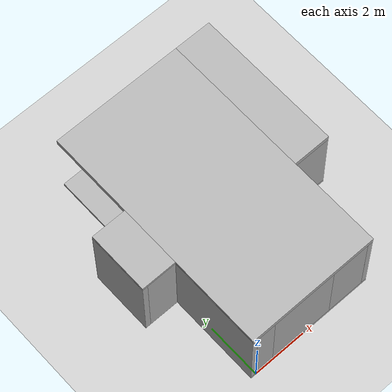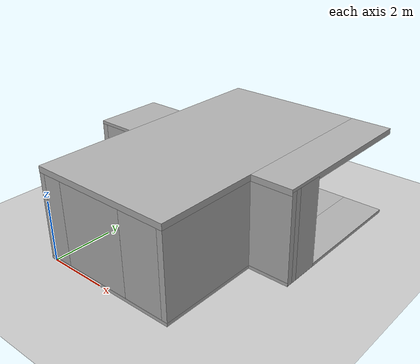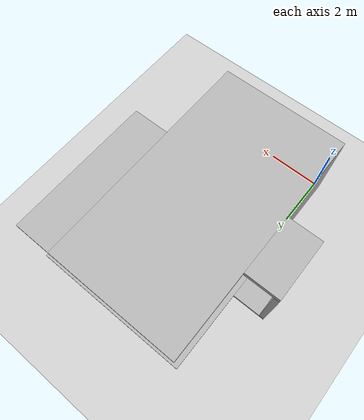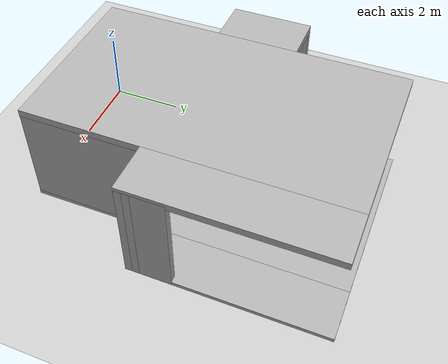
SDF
<sdf version="1.6">
 <world name="default">
  <model name="ground_plane">
   <static>1</static>
   <link name="link">
    <collision name="collision">
     <geometry><plane><normal>0 0 1</normal><size>100 100</size></plane></geometry>
     <surface><friction><ode><mu>100</mu><mu2>50</mu2></ode></friction></surface>
    </collision>
    <visual name="visual">
     <cast_shadows>0</cast_shadows>
     <geometry><plane><normal>0 0 1</normal><size>100 100</size></plane></geometry>
     <material>
      <script><uri>file://media/materials/scripts/gazebo.material</uri><name>Gazebo/Grey</name></script>
     </material>
    </visual>
   </link>
  </model>
  <model name="sean_apartment_.7x_wall">
   <link name="link">
    <inertial>
     <mass>1</mass>
     <inertia>
      <ixx>0.166667</ixx>
      <ixy>0</ixy>
      <ixz>0</ixz>
      <iyy>0.166667</iyy>
      <iyz>0</iyz>
      <izz>0.166667</izz>
     </inertia>
    </inertial>
    <visual name="visual">
     <geometry><box><size>0.7 0.2 3</size></box></geometry>
     <material>
      <ambient>0.0 0.0 0.3 1</ambient>
      <diffuse>0.7 0.7 0.7 1</diffuse>
      <specular>0.01 0.01 0.01 1</specular>
      <emissive>0 0 0 1</emissive>
      <shader type="vertex"><normal_map>__default__</normal_map></shader>
     </material>
     <pose>0 0 1.5 0 -0 0</pose>
    </visual>
    <collision name="collision">
     <pose>0 0 1.5 0 -0 0</pose>
     <geometry><box><size>0.7 0.2 3</size></box></geometry>
     <surface>
      <friction>
       <ode><mu>1</mu><mu2>1</mu2><fdir1>0 0 0</fdir1><slip1>0</slip1><slip2>0</slip2></ode>
       <torsional>
        <coefficient>1</coefficient>
        <patch_radius>0</patch_radius>
        <surface_radius>0</surface_radius>
        <use_patch_radius>1</use_patch_radius>
        <ode><slip>0</slip></ode>
       </torsional>
      </friction>
      <bounce><restitution_coefficient>0</restitution_coefficient><threshold>1e+06</threshold></bounce>
      <contact>
       <collide_without_contact>0</collide_without_contact>
       <collide_without_contact_bitmask>1</collide_without_contact_bitmask>
       <collide_bitmask>1</collide_bitmask>
       <ode>
        <soft_cfm>0</soft_cfm>
        <soft_erp>0.2</soft_erp>
        <kp>1e+13</kp>
        <kd>1</kd>
        <max_vel>0.01</max_vel>
        <min_depth>0</min_depth>
       </ode>
       <bullet>
        <split_impulse>1</split_impulse>
        <split_impulse_penetration_threshold>-0.01</split_impulse_penetration_threshold>
        <soft_cfm>0</soft_cfm>
        <soft_erp>0.2</soft_erp>
        <kp>1e+13</kp>
        <kd>1</kd>
       </bullet>
      </contact>
     </surface>
    </collision>
   </link>
   <static>1</static>
   <pose>0.349997 0.100002 0 0 -0 4e-06</pose>
  </model>
  <model name="sean_apartment_2.4x_wall">
   <link name="link">
    <inertial>
     <mass>1</mass>
     <inertia>
      <ixx>0.166667</ixx>
      <ixy>0</ixy>
      <ixz>0</ixz>
      <iyy>0.166667</iyy>
      <iyz>0</iyz>
      <izz>0.166667</izz>
     </inertia>
    </inertial>
    <visual name="visual">
     <geometry><box><size>2.4 0.2 3</size></box></geometry>
     <material>
      <ambient>0.0 0.0 0.3 1</ambient>
      <diffuse>0.7 0.7 0.7 1</diffuse>
      <specular>0.01 0.01 0.01 1</specular>
      <emissive>0 0 0 1</emissive>
      <shader type="vertex"><normal_map>__default__</normal_map></shader>
     </material>
     <pose>0 0 1.5 0 -0 0</pose>
    </visual>
    <collision name="collision">
     <pose>0 0 1.5 0 -0 0</pose>
     <geometry><box><size>2.4 0.2 3</size></box></geometry>
     <surface>
      <friction>
       <ode><mu>1</mu><mu2>1</mu2><fdir1>0 0 0</fdir1><slip1>0</slip1><slip2>0</slip2></ode>
       <torsional>
        <coefficient>1</coefficient>
        <patch_radius>0</patch_radius>
        <surface_radius>0</surface_radius>
        <use_patch_radius>1</use_patch_radius>
        <ode><slip>0</slip></ode>
       </torsional>
      </friction>
      <bounce><restitution_coefficient>0</restitution_coefficient><threshold>1e+06</threshold></bounce>
      <contact>
       <collide_without_contact>0</collide_without_contact>
       <collide_without_contact_bitmask>1</collide_without_contact_bitmask>
       <collide_bitmask>1</collide_bitmask>
       <ode>
        <soft_cfm>0</soft_cfm>
        <soft_erp>0.2</soft_erp>
        <kp>1e+13</kp>
        <kd>1</kd>
        <max_vel>0.01</max_vel>
        <min_depth>0</min_depth>
       </ode>
       <bullet>
        <split_impulse>1</split_impulse>
        <split_impulse_penetration_threshold>-0.01</split_impulse_penetration_threshold>
        <soft_cfm>0</soft_cfm>
        <soft_erp>0.2</soft_erp>
        <kp>1e+13</kp>
        <kd>1</kd>
       </bullet>
      </contact>
     </surface>
    </collision>
   </link>
   <static>1</static>
   <pose>1.90002 0.09999 -0.00016 2e-06 -0.000134 -6e-06</pose>
  </model>
  <model name="sean_apartment_3.4y_wall">
   <link name="link">
    <inertial>
     <mass>1</mass>
     <inertia>
      <ixx>0.166667</ixx>
      <ixy>0</ixy>
      <ixz>0</ixz>
      <iyy>0.166667</iyy>
      <iyz>0</iyz>
      <izz>0.166667</izz>
     </inertia>
    </inertial>
    <visual name="visual">
     <geometry><box><size>0.2 3.4 3</size></box></geometry>
     <material>
      <ambient>0.0 0.0 0.3 1</ambient>
      <diffuse>0.7 0.7 0.7 1</diffuse>
      <specular>0.01 0.01 0.01 1</specular>
      <emissive>0 0 0 1</emissive>
      <shader type="vertex"><normal_map>__default__</normal_map></shader>
     </material>
     <pose>0 0 1.5 0 -0 0</pose>
    </visual>
    <collision name="collision">
     <pose>0 0 1.5 0 -0 0</pose>
     <geometry><box><size>0.2 3.4 3</size></box></geometry>
     <surface>
      <friction>
       <ode><mu>1</mu><mu2>1</mu2><fdir1>0 0 0</fdir1><slip1>0</slip1><slip2>0</slip2></ode>
       <torsional>
        <coefficient>1</coefficient>
        <patch_radius>0</patch_radius>
        <surface_radius>0</surface_radius>
        <use_patch_radius>1</use_patch_radius>
        <ode><slip>0</slip></ode>
       </torsional>
      </friction>
      <bounce><restitution_coefficient>0</restitution_coefficient><threshold>1e+06</threshold></bounce>
      <contact>
       <collide_without_contact>0</collide_without_contact>
       <collide_without_contact_bitmask>1</collide_without_contact_bitmask>
       <collide_bitmask>1</collide_bitmask>
       <ode>
        <soft_cfm>0</soft_cfm>
        <soft_erp>0.2</soft_erp>
        <kp>1e+13</kp>
        <kd>1</kd>
        <max_vel>0.01</max_vel>
        <min_depth>0</min_depth>
       </ode>
       <bullet>
        <split_impulse>1</split_impulse>
        <split_impulse_penetration_threshold>-0.01</split_impulse_penetration_threshold>
        <soft_cfm>0</soft_cfm>
        <soft_erp>0.2</soft_erp>
        <kp>1e+13</kp>
        <kd>1</kd>
       </bullet>
      </contact>
     </surface>
    </collision>
   </link>
   <static>1</static>
   <pose>4.60003 1.69995 -0.000688 0.000406 9e-06 1.8e-05</pose>
  </model>
  <model name="sean_apartment_1.4x_wall">
   <link name="link">
    <inertial>
     <mass>1</mass>
     <inertia>
      <ixx>0.166667</ixx>
      <ixy>0</ixy>
      <ixz>0</ixz>
      <iyy>0.166667</iyy>
      <iyz>0</iyz>
      <izz>0.166667</izz>
     </inertia>
    </inertial>
    <visual name="visual">
     <geometry><box><size>1.4 0.2 3</size></box></geometry>
     <material>
      <ambient>0.0 0.0 0.3 1</ambient>
      <diffuse>0.7 0.7 0.7 1</diffuse>
      <specular>0.01 0.01 0.01 1</specular>
      <emissive>0 0 0 1</emissive>
      <shader type="vertex"><normal_map>__default__</normal_map></shader>
     </material>
     <pose>0 0 1.5 0 -0 0</pose>
    </visual>
    <collision name="collision">
     <pose>0 0 1.5 0 -0 0</pose>
     <geometry><box><size>1.4 0.2 3</size></box></geometry>
     <surface>
      <friction>
       <ode><mu>1</mu><mu2>1</mu2><fdir1>0 0 0</fdir1><slip1>0</slip1><slip2>0</slip2></ode>
       <torsional>
        <coefficient>1</coefficient>
        <patch_radius>0</patch_radius>
        <surface_radius>0</surface_radius>
        <use_patch_radius>1</use_patch_radius>
        <ode><slip>0</slip></ode>
       </torsional>
      </friction>
      <bounce><restitution_coefficient>0</restitution_coefficient><threshold>1e+06</threshold></bounce>
      <contact>
       <collide_without_contact>0</collide_without_contact>
       <collide_without_contact_bitmask>1</collide_without_contact_bitmask>
       <collide_bitmask>1</collide_bitmask>
       <ode>
        <soft_cfm>0</soft_cfm>
        <soft_erp>0.2</soft_erp>
        <kp>1e+13</kp>
        <kd>1</kd>
        <max_vel>0.01</max_vel>
        <min_depth>0</min_depth>
       </ode>
       <bullet>
        <split_impulse>1</split_impulse>
        <split_impulse_penetration_threshold>-0.01</split_impulse_penetration_threshold>
        <soft_cfm>0</soft_cfm>
        <soft_erp>0.2</soft_erp>
        <kp>1e+13</kp>
        <kd>1</kd>
       </bullet>
      </contact>
     </surface>
    </collision>
   </link>
   <static>1</static>
   <pose>3.80002 0.099955 -1.4e-05 0 -2e-05 -3.9e-05</pose>
  </model>
  <model name="sean_ceiling">
   <link name="link">
    <pose>7.96507 7.76554 0 0 -0 0</pose>
    <inertial>
     <mass>1</mass>
     <inertia>
      <ixx>0.166667</ixx>
      <ixy>0</ixy>
      <ixz>0</ixz>
      <iyy>0.166667</iyy>
      <iyz>0</iyz>
      <izz>0.166667</izz>
     </inertia>
    </inertial>
    <visual name="visual">
     <geometry><box><size>4.9 8.9 0.2</size></box></geometry>
     <material>
      <ambient>0.0 0.3 0.0 1</ambient>
      <diffuse>0.7 0.7 0.7 1</diffuse>
      <specular>0.01 0.01 0.01 1</specular>
      <emissive>0 0 0 1</emissive>
      <shader type="vertex"><normal_map>__default__</normal_map></shader>
     </material>
    </visual>
    <collision name="collision">
     <geometry><box><size>4.9 8.9 0.2</size></box></geometry>
     <surface>
      <friction>
       <ode><mu>1</mu><mu2>1</mu2><fdir1>0 0 0</fdir1><slip1>0</slip1><slip2>0</slip2></ode>
       <torsional>
        <coefficient>1</coefficient>
        <patch_radius>0</patch_radius>
        <surface_radius>0</surface_radius>
        <use_patch_radius>1</use_patch_radius>
        <ode><slip>0</slip></ode>
       </torsional>
      </friction>
      <bounce><restitution_coefficient>0</restitution_coefficient><threshold>1e+06</threshold></bounce>
      <contact>
       <collide_without_contact>0</collide_without_contact>
       <collide_without_contact_bitmask>1</collide_without_contact_bitmask>
       <collide_bitmask>1</collide_bitmask>
       <ode>
        <soft_cfm>0</soft_cfm>
        <soft_erp>0.2</soft_erp>
        <kp>1e+13</kp>
        <kd>1</kd>
        <max_vel>0.01</max_vel>
        <min_depth>0</min_depth>
       </ode>
       <bullet>
        <split_impulse>1</split_impulse>
        <split_impulse_penetration_threshold>-0.01</split_impulse_penetration_threshold>
        <soft_cfm>0</soft_cfm>
        <soft_erp>0.2</soft_erp>
        <kp>1e+13</kp>
        <kd>1</kd>
       </bullet>
      </contact>
     </surface>
    </collision>
   </link>
   <link name="link_1">
    <pose>4.86729 7.87368 0 0 -0 0</pose>
    <inertial>
     <mass>1</mass>
     <inertia>
      <ixx>0.166667</ixx>
      <ixy>0</ixy>
      <ixz>0</ixz>
      <iyy>0.166667</iyy>
      <iyz>0</iyz>
      <izz>0.166667</izz>
     </inertia>
    </inertial>
    <visual name="visual">
     <geometry><box><size>1.3 2.3 0.2</size></box></geometry>
     <material>
      <lighting>1</lighting>
      <ambient>0.0 0.3 0.0 1</ambient>
      <diffuse>0.7 0.7 0.7 1</diffuse>
      <specular>0.01 0.01 0.01 1</specular>
      <emissive>0 0 0 1</emissive>
      <shader type="vertex"><normal_map>__default__</normal_map></shader>
     </material>
    </visual>
    <collision name="collision">
     <geometry><box><size>1.3 2.3 0.2</size></box></geometry>
     <surface>
      <friction>
       <ode><mu>1</mu><mu2>1</mu2><fdir1>0 0 0</fdir1><slip1>0</slip1><slip2>0</slip2></ode>
       <torsional>
        <coefficient>1</coefficient>
        <patch_radius>0</patch_radius>
        <surface_radius>0</surface_radius>
        <use_patch_radius>1</use_patch_radius>
        <ode><slip>0</slip></ode>
       </torsional>
      </friction>
      <bounce><restitution_coefficient>0</restitution_coefficient><threshold>1e+06</threshold></bounce>
      <contact>
       <collide_without_contact>0</collide_without_contact>
       <collide_without_contact_bitmask>1</collide_without_contact_bitmask>
       <collide_bitmask>1</collide_bitmask>
       <ode>
        <soft_cfm>0</soft_cfm>
        <soft_erp>0.2</soft_erp>
        <kp>1e+13</kp>
        <kd>1</kd>
        <max_vel>0.01</max_vel>
        <min_depth>0</min_depth>
       </ode>
       <bullet>
        <split_impulse>1</split_impulse>
        <split_impulse_penetration_threshold>-0.01</split_impulse_penetration_threshold>
        <soft_cfm>0</soft_cfm>
        <soft_erp>0.2</soft_erp>
        <kp>1e+13</kp>
        <kd>1</kd>
       </bullet>
      </contact>
     </surface>
    </collision>
   </link>
   <link name="link_2">
    <pose>11.1108 9.46554 0 0 -0 0</pose>
    <inertial>
     <mass>1</mass>
     <inertia>
      <ixx>0.166667</ixx>
      <ixy>0</ixy>
      <ixz>0</ixz>
      <iyy>0.166667</iyy>
      <iyz>0</iyz>
      <izz>0.166667</izz>
     </inertia>
    </inertial>
    <visual name="visual">
     <geometry><box><size>1.4 5.5 0.2</size></box></geometry>
     <material>
      <lighting>1</lighting>
      <ambient>0.0 0.3 0.0 1</ambient>
      <diffuse>0.7 0.7 0.7 1</diffuse>
      <specular>0.01 0.01 0.01 1</specular>
      <emissive>0 0 0 1</emissive>
      <shader type="vertex"><normal_map>__default__</normal_map></shader>
     </material>
    </visual>
    <collision name="collision">
     <geometry><box><size>1.4 5.5 0.2</size></box></geometry>
     <surface>
      <friction>
       <ode><mu>1</mu><mu2>1</mu2><fdir1>0 0 0</fdir1><slip1>0</slip1><slip2>0</slip2></ode>
       <torsional>
        <coefficient>1</coefficient>
        <patch_radius>0</patch_radius>
        <surface_radius>0</surface_radius>
        <use_patch_radius>1</use_patch_radius>
        <ode><slip>0</slip></ode>
       </torsional>
      </friction>
      <bounce><restitution_coefficient>0</restitution_coefficient><threshold>1e+06</threshold></bounce>
      <contact>
       <collide_without_contact>0</collide_without_contact>
       <collide_without_contact_bitmask>1</collide_without_contact_bitmask>
       <collide_bitmask>1</collide_bitmask>
       <ode>
        <soft_cfm>0</soft_cfm>
        <soft_erp>0.2</soft_erp>
        <kp>1e+13</kp>
        <kd>1</kd>
        <max_vel>0.01</max_vel>
        <min_depth>0</min_depth>
       </ode>
       <bullet>
        <split_impulse>1</split_impulse>
        <split_impulse_penetration_threshold>-0.01</split_impulse_penetration_threshold>
        <soft_cfm>0</soft_cfm>
        <soft_erp>0.2</soft_erp>
        <kp>1e+13</kp>
        <kd>1</kd>
       </bullet>
      </contact>
     </surface>
    </collision>
   </link>
   <static>1</static>
   <pose>-5.711 -3.322 3 0 -0 0</pose>
  </model>
  <model name="sean_apartment_3.6_wall_0">
   <link name="link">
    <inertial>
     <mass>1</mass>
     <inertia>
      <ixx>0.166667</ixx>
      <ixy>0</ixy>
      <ixz>0</ixz>
      <iyy>0.166667</iyy>
      <iyz>0</iyz>
      <izz>0.166667</izz>
     </inertia>
    </inertial>
    <visual name="visual">
     <geometry><box><size>0.2 3.6 3</size></box></geometry>
     <material>
      <ambient>0.0 0.0 0.3 1</ambient>
      <diffuse>0.7 0.7 0.7 1</diffuse>
      <specular>0.01 0.01 0.01 1</specular>
      <emissive>0 0 0 1</emissive>
      <shader type="vertex"><normal_map>__default__</normal_map></shader>
     </material>
     <pose>0 0 1.5 0 -0 0</pose>
    </visual>
    <collision name="collision">
     <pose>0 0 1.5 0 -0 0</pose>
     <geometry><box><size>0.2 3.6 3</size></box></geometry>
     <surface>
      <friction>
       <ode><mu>1</mu><mu2>1</mu2><fdir1>0 0 0</fdir1><slip1>0</slip1><slip2>0</slip2></ode>
       <torsional>
        <coefficient>1</coefficient>
        <patch_radius>0</patch_radius>
        <surface_radius>0</surface_radius>
        <use_patch_radius>1</use_patch_radius>
        <ode><slip>0</slip></ode>
       </torsional>
      </friction>
      <bounce><restitution_coefficient>0</restitution_coefficient><threshold>1e+06</threshold></bounce>
      <contact>
       <collide_without_contact>0</collide_without_contact>
       <collide_without_contact_bitmask>1</collide_without_contact_bitmask>
       <collide_bitmask>1</collide_bitmask>
       <ode>
        <soft_cfm>0</soft_cfm>
        <soft_erp>0.2</soft_erp>
        <kp>1e+13</kp>
        <kd>1</kd>
        <max_vel>0.01</max_vel>
        <min_depth>0</min_depth>
       </ode>
       <bullet>
        <split_impulse>1</split_impulse>
        <split_impulse_penetration_threshold>-0.01</split_impulse_penetration_threshold>
        <soft_cfm>0</soft_cfm>
        <soft_erp>0.2</soft_erp>
        <kp>1e+13</kp>
        <kd>1</kd>
       </bullet>
      </contact>
     </surface>
    </collision>
   </link>
   <static>1</static>
   <pose>-0.100031 1.8 -0.000872 -0.000486 -1.1e-05 -2.3e-05</pose>
  </model>
  <model name="sean_apartment_1.6x_wall_0">
   <link name="link">
    <inertial>
     <mass>1</mass>
     <inertia>
      <ixx>0.166667</ixx>
      <ixy>0</ixy>
      <ixz>0</ixz>
      <iyy>0.166667</iyy>
      <iyz>0</iyz>
      <izz>0.166667</izz>
     </inertia>
    </inertial>
    <visual name="visual">
     <geometry><box><size>1.6 0.2 3</size></box></geometry>
     <material>
      <ambient>0.0 0.0 0.3 1</ambient>
      <diffuse>0.7 0.7 0.7 1</diffuse>
      <specular>0.01 0.01 0.01 1</specular>
      <emissive>0 0 0 1</emissive>
      <shader type="vertex"><normal_map>__default__</normal_map></shader>
     </material>
     <pose>0 0 1.5 0 -0 0</pose>
    </visual>
    <collision name="collision">
     <pose>0 0 1.5 0 -0 0</pose>
     <geometry><box><size>1.6 0.2 3</size></box></geometry>
     <surface>
      <friction>
       <ode><mu>1</mu><mu2>1</mu2><fdir1>0 0 0</fdir1><slip1>0</slip1><slip2>0</slip2></ode>
       <torsional>
        <coefficient>1</coefficient>
        <patch_radius>0</patch_radius>
        <surface_radius>0</surface_radius>
        <use_patch_radius>1</use_patch_radius>
        <ode><slip>0</slip></ode>
       </torsional>
      </friction>
      <bounce><restitution_coefficient>0</restitution_coefficient><threshold>1e+06</threshold></bounce>
      <contact>
       <collide_without_contact>0</collide_without_contact>
       <collide_without_contact_bitmask>1</collide_without_contact_bitmask>
       <collide_bitmask>1</collide_bitmask>
       <ode>
        <soft_cfm>0</soft_cfm>
        <soft_erp>0.2</soft_erp>
        <kp>1e+13</kp>
        <kd>1</kd>
        <max_vel>0.01</max_vel>
        <min_depth>0</min_depth>
       </ode>
       <bullet>
        <split_impulse>1</split_impulse>
        <split_impulse_penetration_threshold>-0.01</split_impulse_penetration_threshold>
        <soft_cfm>0</soft_cfm>
        <soft_erp>0.2</soft_erp>
        <kp>1e+13</kp>
        <kd>1</kd>
       </bullet>
      </contact>
     </surface>
    </collision>
   </link>
   <static>1</static>
   <pose>5.30001 3.4999 -2.6e-05 -0 -3.3e-05 -0.000675</pose>
  </model>
  <model name="seans_apartment_.2x_wall">
   <link name="link">
    <inertial>
     <mass>1</mass>
     <inertia>
      <ixx>0.166667</ixx>
      <ixy>0</ixy>
      <ixz>0</ixz>
      <iyy>0.166667</iyy>
      <iyz>0</iyz>
      <izz>0.166667</izz>
     </inertia>
    </inertial>
    <visual name="visual">
     <geometry><box><size>0.2 0.2 3</size></box></geometry>
     <material>
      <ambient>0.0 0.0 0.3 1</ambient>
      <diffuse>0.7 0.7 0.7 1</diffuse>
      <specular>0.01 0.01 0.01 1</specular>
      <emissive>0 0 0 1</emissive>
      <shader type="vertex"><normal_map>__default__</normal_map></shader>
     </material>
     <pose>0 0 1.5 0 -0 0</pose>
    </visual>
    <collision name="collision">
     <pose>0 0 1.5 0 -0 0</pose>
     <geometry><box><size>0.2 0.2 3</size></box></geometry>
     <surface>
      <friction>
       <ode><mu>1</mu><mu2>1</mu2><fdir1>0 0 0</fdir1><slip1>0</slip1><slip2>0</slip2></ode>
       <torsional>
        <coefficient>1</coefficient>
        <patch_radius>0</patch_radius>
        <surface_radius>0</surface_radius>
        <use_patch_radius>1</use_patch_radius>
        <ode><slip>0</slip></ode>
       </torsional>
      </friction>
      <bounce><restitution_coefficient>0</restitution_coefficient><threshold>1e+06</threshold></bounce>
      <contact>
       <collide_without_contact>0</collide_without_contact>
       <collide_without_contact_bitmask>1</collide_without_contact_bitmask>
       <collide_bitmask>1</collide_bitmask>
       <ode>
        <soft_cfm>0</soft_cfm>
        <soft_erp>0.2</soft_erp>
        <kp>1e+13</kp>
        <kd>1</kd>
        <max_vel>0.01</max_vel>
        <min_depth>0</min_depth>
       </ode>
       <bullet>
        <split_impulse>1</split_impulse>
        <split_impulse_penetration_threshold>-0.01</split_impulse_penetration_threshold>
        <soft_cfm>0</soft_cfm>
        <soft_erp>0.2</soft_erp>
        <kp>1e+13</kp>
        <kd>1</kd>
       </bullet>
      </contact>
     </surface>
    </collision>
   </link>
   <static>1</static>
   <pose>6.00002 3.6996 -1e-06 -4e-06 -4e-06 -0.000242</pose>
  </model>
  <model name="sean_apartment_.9y_wall">
   <link name="link">
    <inertial>
     <mass>1</mass>
     <inertia>
      <ixx>0.166667</ixx>
      <ixy>0</ixy>
      <ixz>0</ixz>
      <iyy>0.166667</iyy>
      <iyz>0</iyz>
      <izz>0.166667</izz>
     </inertia>
    </inertial>
    <visual name="visual">
     <geometry><box><size>0.2 0.9 3</size></box></geometry>
     <material>
      <ambient>0.0 0.0 0.3 1</ambient>
      <diffuse>0.7 0.7 0.7 1</diffuse>
      <specular>0.01 0.01 0.01 1</specular>
      <emissive>0 0 0 1</emissive>
      <shader type="vertex"><normal_map>__default__</normal_map></shader>
     </material>
     <pose>0 0 1.5 0 -0 0</pose>
    </visual>
    <collision name="collision">
     <pose>0 0 1.5 0 -0 0</pose>
     <geometry><box><size>0.2 0.9 3</size></box></geometry>
     <surface>
      <friction>
       <ode><mu>1</mu><mu2>1</mu2><fdir1>0 0 0</fdir1><slip1>0</slip1><slip2>0</slip2></ode>
       <torsional>
        <coefficient>1</coefficient>
        <patch_radius>0</patch_radius>
        <surface_radius>0</surface_radius>
        <use_patch_radius>1</use_patch_radius>
        <ode><slip>0</slip></ode>
       </torsional>
      </friction>
      <bounce><restitution_coefficient>0</restitution_coefficient><threshold>1e+06</threshold></bounce>
      <contact>
       <collide_without_contact>0</collide_without_contact>
       <collide_without_contact_bitmask>1</collide_without_contact_bitmask>
       <collide_bitmask>1</collide_bitmask>
       <ode>
        <soft_cfm>0</soft_cfm>
        <soft_erp>0.2</soft_erp>
        <kp>1e+13</kp>
        <kd>1</kd>
        <max_vel>0.01</max_vel>
        <min_depth>0</min_depth>
       </ode>
       <bullet>
        <split_impulse>1</split_impulse>
        <split_impulse_penetration_threshold>-0.01</split_impulse_penetration_threshold>
        <soft_cfm>0</soft_cfm>
        <soft_erp>0.2</soft_erp>
        <kp>1e+13</kp>
        <kd>1</kd>
       </bullet>
      </contact>
     </surface>
    </collision>
   </link>
   <static>1</static>
   <pose>6.00004 4.24963 -2e-06 4e-06 -0 -0.000245</pose>
  </model>
  <model name="sean_floor">
   <link name="link">
    <pose>7.96507 7.76554 0 0 -0 0</pose>
    <inertial>
     <mass>1</mass>
     <inertia>
      <ixx>0.166667</ixx>
      <ixy>0</ixy>
      <ixz>0</ixz>
      <iyy>0.166667</iyy>
      <iyz>0</iyz>
      <izz>0.166667</izz>
     </inertia>
    </inertial>
    <visual name="visual">
     <geometry><box><size>4.9 8.9 0.2</size></box></geometry>
     <material>
      <ambient>0.3 0.0 0.3 1</ambient>
      <diffuse>0.7 0.7 0.7 1</diffuse>
      <specular>0.01 0.01 0.01 1</specular>
      <emissive>0 0 0 1</emissive>
      <shader type="vertex"><normal_map>__default__</normal_map></shader>
     </material>
    </visual>
    <collision name="collision">
     <geometry><box><size>4.9 8.9 0.2</size></box></geometry>
     <surface>
      <friction>
       <ode><mu>1</mu><mu2>1</mu2><fdir1>0 0 0</fdir1><slip1>0</slip1><slip2>0</slip2></ode>
       <torsional>
        <coefficient>1</coefficient>
        <patch_radius>0</patch_radius>
        <surface_radius>0</surface_radius>
        <use_patch_radius>1</use_patch_radius>
        <ode><slip>0</slip></ode>
       </torsional>
      </friction>
      <bounce><restitution_coefficient>0</restitution_coefficient><threshold>1e+06</threshold></bounce>
      <contact>
       <collide_without_contact>0</collide_without_contact>
       <collide_without_contact_bitmask>1</collide_without_contact_bitmask>
       <collide_bitmask>1</collide_bitmask>
       <ode>
        <soft_cfm>0</soft_cfm>
        <soft_erp>0.2</soft_erp>
        <kp>1e+13</kp>
        <kd>1</kd>
        <max_vel>0.01</max_vel>
        <min_depth>0</min_depth>
       </ode>
       <bullet>
        <split_impulse>1</split_impulse>
        <split_impulse_penetration_threshold>-0.01</split_impulse_penetration_threshold>
        <soft_cfm>0</soft_cfm>
        <soft_erp>0.2</soft_erp>
        <kp>1e+13</kp>
        <kd>1</kd>
       </bullet>
      </contact>
     </surface>
    </collision>
   </link>
   <link name="link_1">
    <pose>4.86729 7.87368 0 0 -0 0</pose>
    <inertial>
     <mass>1</mass>
     <inertia>
      <ixx>0.166667</ixx>
      <ixy>0</ixy>
      <ixz>0</ixz>
      <iyy>0.166667</iyy>
      <iyz>0</iyz>
      <izz>0.166667</izz>
     </inertia>
    </inertial>
    <visual name="visual">
     <geometry><box><size>1.3 2.3 0.2</size></box></geometry>
     <material>
      <lighting>1</lighting>
      <ambient>0.3 0.0 0.3 1</ambient>
      <diffuse>0.7 0.7 0.7 1</diffuse>
      <specular>0.01 0.01 0.01 1</specular>
      <emissive>0 0 0 1</emissive>
      <shader type="vertex"><normal_map>__default__</normal_map></shader>
     </material>
    </visual>
    <collision name="collision">
     <geometry><box><size>1.3 2.3 0.2</size></box></geometry>
     <surface>
      <friction>
       <ode><mu>1</mu><mu2>1</mu2><fdir1>0 0 0</fdir1><slip1>0</slip1><slip2>0</slip2></ode>
       <torsional>
        <coefficient>1</coefficient>
        <patch_radius>0</patch_radius>
        <surface_radius>0</surface_radius>
        <use_patch_radius>1</use_patch_radius>
        <ode><slip>0</slip></ode>
       </torsional>
      </friction>
      <bounce><restitution_coefficient>0</restitution_coefficient><threshold>1e+06</threshold></bounce>
      <contact>
       <collide_without_contact>0</collide_without_contact>
       <collide_without_contact_bitmask>1</collide_without_contact_bitmask>
       <collide_bitmask>1</collide_bitmask>
       <ode>
        <soft_cfm>0</soft_cfm>
        <soft_erp>0.2</soft_erp>
        <kp>1e+13</kp>
        <kd>1</kd>
        <max_vel>0.01</max_vel>
        <min_depth>0</min_depth>
       </ode>
       <bullet>
        <split_impulse>1</split_impulse>
        <split_impulse_penetration_threshold>-0.01</split_impulse_penetration_threshold>
        <soft_cfm>0</soft_cfm>
        <soft_erp>0.2</soft_erp>
        <kp>1e+13</kp>
        <kd>1</kd>
       </bullet>
      </contact>
     </surface>
    </collision>
   </link>
   <link name="link_2">
    <pose>11.1108 9.46554 0 0 -0 0</pose>
    <inertial>
     <mass>1</mass>
     <inertia>
      <ixx>0.166667</ixx>
      <ixy>0</ixy>
      <ixz>0</ixz>
      <iyy>0.166667</iyy>
      <iyz>0</iyz>
      <izz>0.166667</izz>
     </inertia>
    </inertial>
    <visual name="visual">
     <geometry><box><size>1.4 5.5 0.2</size></box></geometry>
     <material>
      <lighting>1</lighting>
      <ambient>0.3 0.0 0.3 1</ambient>
      <diffuse>0.7 0.7 0.7 1</diffuse>
      <specular>0.01 0.01 0.01 1</specular>
      <emissive>0 0 0 1</emissive>
      <shader type="vertex"><normal_map>__default__</normal_map></shader>
     </material>
    </visual>
    <collision name="collision">
     <geometry><box><size>1.4 5.5 0.2</size></box></geometry>
     <surface>
      <friction>
       <ode><mu>1</mu><mu2>1</mu2><fdir1>0 0 0</fdir1><slip1>0</slip1><slip2>0</slip2></ode>
       <torsional>
        <coefficient>1</coefficient>
        <patch_radius>0</patch_radius>
        <surface_radius>0</surface_radius>
        <use_patch_radius>1</use_patch_radius>
        <ode><slip>0</slip></ode>
       </torsional>
      </friction>
      <bounce><restitution_coefficient>0</restitution_coefficient><threshold>1e+06</threshold></bounce>
      <contact>
       <collide_without_contact>0</collide_without_contact>
       <collide_without_contact_bitmask>1</collide_without_contact_bitmask>
       <collide_bitmask>1</collide_bitmask>
       <ode>
        <soft_cfm>0</soft_cfm>
        <soft_erp>0.2</soft_erp>
        <kp>1e+13</kp>
        <kd>1</kd>
        <max_vel>0.01</max_vel>
        <min_depth>0</min_depth>
       </ode>
       <bullet>
        <split_impulse>1</split_impulse>
        <split_impulse_penetration_threshold>-0.01</split_impulse_penetration_threshold>
        <soft_cfm>0</soft_cfm>
        <soft_erp>0.2</soft_erp>
        <kp>1e+13</kp>
        <kd>1</kd>
       </bullet>
      </contact>
     </surface>
    </collision>
   </link>
   <static>1</static>
   <pose>-5.71166 -3.32189 0 0 -0 0</pose>
  </model>
  <model name="sean_apartment_2.3x_wall_2">
   <link name="link">
    <inertial>
     <mass>1</mass>
     <inertia>
      <ixx>0.166667</ixx>
      <ixy>0</ixy>
      <ixz>0</ixz>
      <iyy>0.166667</iyy>
      <iyz>0</iyz>
      <izz>0.166667</izz>
     </inertia>
    </inertial>
    <visual name="visual">
     <geometry><box><size>2.3 0.2 3</size></box></geometry>
     <material>
      <ambient>0.0 0.0 0.3 1</ambient>
      <diffuse>0.7 0.7 0.7 1</diffuse>
      <specular>0.01 0.01 0.01 1</specular>
      <emissive>0 0 0 1</emissive>
      <shader type="vertex"><normal_map>__default__</normal_map></shader>
     </material>
     <pose>0 0 1.5 0 -0 0</pose>
    </visual>
    <collision name="collision">
     <pose>0 0 1.5 0 -0 0</pose>
     <geometry><box><size>2.3 0.2 3</size></box></geometry>
     <surface>
      <friction>
       <ode><mu>1</mu><mu2>1</mu2><fdir1>0 0 0</fdir1><slip1>0</slip1><slip2>0</slip2></ode>
       <torsional>
        <coefficient>1</coefficient>
        <patch_radius>0</patch_radius>
        <surface_radius>0</surface_radius>
        <use_patch_radius>1</use_patch_radius>
        <ode><slip>0</slip></ode>
       </torsional>
      </friction>
      <bounce><restitution_coefficient>0</restitution_coefficient><threshold>1e+06</threshold></bounce>
      <contact>
       <collide_without_contact>0</collide_without_contact>
       <collide_without_contact_bitmask>1</collide_without_contact_bitmask>
       <collide_bitmask>1</collide_bitmask>
       <ode>
        <soft_cfm>0</soft_cfm>
        <soft_erp>0.2</soft_erp>
        <kp>1e+13</kp>
        <kd>1</kd>
        <max_vel>0.01</max_vel>
        <min_depth>0</min_depth>
       </ode>
       <bullet>
        <split_impulse>1</split_impulse>
        <split_impulse_penetration_threshold>-0.01</split_impulse_penetration_threshold>
        <soft_cfm>0</soft_cfm>
        <soft_erp>0.2</soft_erp>
        <kp>1e+13</kp>
        <kd>1</kd>
       </bullet>
      </contact>
     </surface>
    </collision>
   </link>
   <static>1</static>
   <pose>-1.4 4.55 -0.000134 -1e-06 0.000117 1.5708</pose>
  </model>
  <model name="sean_apartment_1.1x_wall_2">
   <link name="link">
    <inertial>
     <mass>1</mass>
     <inertia>
      <ixx>0.166667</ixx>
      <ixy>0</ixy>
      <ixz>0</ixz>
      <iyy>0.166667</iyy>
      <iyz>0</iyz>
      <izz>0.166667</izz>
     </inertia>
    </inertial>
    <visual name="visual">
     <geometry><box><size>1.1 0.2 3</size></box></geometry>
     <material>
      <ambient>0.0 0.0 0.3 1</ambient>
      <diffuse>0.7 0.7 0.7 1</diffuse>
      <specular>0.01 0.01 0.01 1</specular>
      <emissive>0 0 0 1</emissive>
      <shader type="vertex"><normal_map>__default__</normal_map></shader>
     </material>
     <pose>0 0 1.5 0 -0 0</pose>
    </visual>
    <collision name="collision">
     <pose>0 0 1.5 0 -0 0</pose>
     <geometry><box><size>1.1 0.2 3</size></box></geometry>
     <surface>
      <friction>
       <ode><mu>1</mu><mu2>1</mu2><fdir1>0 0 0</fdir1><slip1>0</slip1><slip2>0</slip2></ode>
       <torsional>
        <coefficient>1</coefficient>
        <patch_radius>0</patch_radius>
        <surface_radius>0</surface_radius>
        <use_patch_radius>1</use_patch_radius>
        <ode><slip>0</slip></ode>
       </torsional>
      </friction>
      <bounce><restitution_coefficient>0</restitution_coefficient><threshold>1e+06</threshold></bounce>
      <contact>
       <collide_without_contact>0</collide_without_contact>
       <collide_without_contact_bitmask>1</collide_without_contact_bitmask>
       <collide_bitmask>1</collide_bitmask>
       <ode>
        <soft_cfm>0</soft_cfm>
        <soft_erp>0.2</soft_erp>
        <kp>1e+13</kp>
        <kd>1</kd>
        <max_vel>0.01</max_vel>
        <min_depth>0</min_depth>
       </ode>
       <bullet>
        <split_impulse>1</split_impulse>
        <split_impulse_penetration_threshold>-0.01</split_impulse_penetration_threshold>
        <soft_cfm>0</soft_cfm>
        <soft_erp>0.2</soft_erp>
        <kp>1e+13</kp>
        <kd>1</kd>
       </bullet>
      </contact>
     </surface>
    </collision>
   </link>
   <static>1</static>
   <pose>-0.75 3.5 0 0 -0 0</pose>
  </model>
  <model name="sean_couch_small">
   <link name="link">
    <inertial>
     <mass>1</mass>
     <inertia>
      <ixx>0.166667</ixx>
      <ixy>0</ixy>
      <ixz>0</ixz>
      <iyy>0.166667</iyy>
      <iyz>0</iyz>
      <izz>0.166667</izz>
     </inertia>
    </inertial>
    <visual name="ModelPreview_6::link::visual_1">
     <geometry><box><size>1.8 0.2 0.2</size></box></geometry>
     <material>
      <ambient>0.3 0.0 0.0 1</ambient>
      <diffuse>0.7 0.7 0.7 1</diffuse>
      <specular>0.01 0.01 0.01 1</specular>
      <emissive>0 0 0 1</emissive>
      <shader type="vertex"><normal_map>__default__</normal_map></shader>
     </material>
     <pose>0 0.35 0.3 0 -0 0</pose>
    </visual>
    <visual name="visual">
     <geometry><box><size>1.8 0.9 0.4</size></box></geometry>
     <material>
      <ambient>0.3 0.0 0.0 1</ambient>
      <diffuse>0.7 0.7 0.7 1</diffuse>
      <specular>0.01 0.01 0.01 1</specular>
      <emissive>0 0 0 1</emissive>
      <shader type="vertex"><normal_map>__default__</normal_map></shader>
     </material>
    </visual>
    <visual name="ModelPreview_6::link::visual_3">
     <geometry><box><size>0.2 0.7 0.2</size></box></geometry>
     <material>
      <ambient>0.3 0.0 0.0 1</ambient>
      <diffuse>0.7 0.7 0.7 1</diffuse>
      <specular>0.01 0.01 0.01 1</specular>
      <emissive>0 0 0 1</emissive>
      <shader type="vertex"><normal_map>__default__</normal_map></shader>
     </material>
     <pose>-0.8 -0.1 0.3 0 -0 0</pose>
    </visual>
    <visual name="ModelPreview_6::link::visual_2">
     <geometry><box><size>0.2 0.7 0.2</size></box></geometry>
     <material>
      <ambient>0.3 0.0 0.0 1</ambient>
      <diffuse>0.7 0.7 0.7 1</diffuse>
      <specular>0.01 0.01 0.01 1</specular>
      <emissive>0 0 0 1</emissive>
      <shader type="vertex"><normal_map>__default__</normal_map></shader>
     </material>
     <pose>0.8 -0.1 0.3 0 -0 0</pose>
    </visual>
    <collision name="collision">
     <geometry><box><size>1.8 0.9 0.4</size></box></geometry>
     <surface>
      <friction>
       <ode><mu>1</mu><mu2>1</mu2><fdir1>0 0 0</fdir1><slip1>0</slip1><slip2>0</slip2></ode>
       <torsional>
        <coefficient>1</coefficient>
        <patch_radius>0</patch_radius>
        <surface_radius>0</surface_radius>
        <use_patch_radius>1</use_patch_radius>
        <ode><slip>0</slip></ode>
       </torsional>
      </friction>
      <bounce><restitution_coefficient>0</restitution_coefficient><threshold>1e+06</threshold></bounce>
      <contact>
       <collide_without_contact>0</collide_without_contact>
       <collide_without_contact_bitmask>1</collide_without_contact_bitmask>
       <collide_bitmask>1</collide_bitmask>
       <ode>
        <soft_cfm>0</soft_cfm>
        <soft_erp>0.2</soft_erp>
        <kp>1e+13</kp>
        <kd>1</kd>
        <max_vel>0.01</max_vel>
        <min_depth>0</min_depth>
       </ode>
       <bullet>
        <split_impulse>1</split_impulse>
        <split_impulse_penetration_threshold>-0.01</split_impulse_penetration_threshold>
        <soft_cfm>0</soft_cfm>
        <soft_erp>0.2</soft_erp>
        <kp>1e+13</kp>
        <kd>1</kd>
       </bullet>
      </contact>
     </surface>
    </collision>
    <collision name="collision_1">
     <pose>0 0.35 0.3 0 -0 0</pose>
     <geometry><box><size>1.8 0.2 0.2</size></box></geometry>
     <surface>
      <friction>
       <ode><mu>1</mu><mu2>1</mu2><fdir1>0 0 0</fdir1><slip1>0</slip1><slip2>0</slip2></ode>
       <torsional>
        <coefficient>1</coefficient>
        <patch_radius>0</patch_radius>
        <surface_radius>0</surface_radius>
        <use_patch_radius>1</use_patch_radius>
        <ode><slip>0</slip></ode>
       </torsional>
      </friction>
      <bounce><restitution_coefficient>0</restitution_coefficient><threshold>1e+06</threshold></bounce>
      <contact>
       <collide_without_contact>0</collide_without_contact>
       <collide_without_contact_bitmask>1</collide_without_contact_bitmask>
       <collide_bitmask>1</collide_bitmask>
       <ode>
        <soft_cfm>0</soft_cfm>
        <soft_erp>0.2</soft_erp>
        <kp>1e+13</kp>
        <kd>1</kd>
        <max_vel>0.01</max_vel>
        <min_depth>0</min_depth>
       </ode>
       <bullet>
        <split_impulse>1</split_impulse>
        <split_impulse_penetration_threshold>-0.01</split_impulse_penetration_threshold>
        <soft_cfm>0</soft_cfm>
        <soft_erp>0.2</soft_erp>
        <kp>1e+13</kp>
        <kd>1</kd>
       </bullet>
      </contact>
     </surface>
    </collision>
    <collision name="collision_3">
     <pose>-0.8 -0.1 0.3 0 -0 0</pose>
     <geometry><box><size>0.2 0.7 0.2</size></box></geometry>
     <surface>
      <friction>
       <ode><mu>1</mu><mu2>1</mu2><fdir1>0 0 0</fdir1><slip1>0</slip1><slip2>0</slip2></ode>
       <torsional>
        <coefficient>1</coefficient>
        <patch_radius>0</patch_radius>
        <surface_radius>0</surface_radius>
        <use_patch_radius>1</use_patch_radius>
        <ode><slip>0</slip></ode>
       </torsional>
      </friction>
      <bounce><restitution_coefficient>0</restitution_coefficient><threshold>1e+06</threshold></bounce>
      <contact>
       <collide_without_contact>0</collide_without_contact>
       <collide_without_contact_bitmask>1</collide_without_contact_bitmask>
       <collide_bitmask>1</collide_bitmask>
       <ode>
        <soft_cfm>0</soft_cfm>
        <soft_erp>0.2</soft_erp>
        <kp>1e+13</kp>
        <kd>1</kd>
        <max_vel>0.01</max_vel>
        <min_depth>0</min_depth>
       </ode>
       <bullet>
        <split_impulse>1</split_impulse>
        <split_impulse_penetration_threshold>-0.01</split_impulse_penetration_threshold>
        <soft_cfm>0</soft_cfm>
        <soft_erp>0.2</soft_erp>
        <kp>1e+13</kp>
        <kd>1</kd>
       </bullet>
      </contact>
     </surface>
    </collision>
    <collision name="collision_2">
     <pose>0.8 -0.1 0.3 0 -0 0</pose>
     <geometry><box><size>0.2 0.7 0.2</size></box></geometry>
     <surface>
      <friction>
       <ode><mu>1</mu><mu2>1</mu2><fdir1>0 0 0</fdir1><slip1>0</slip1><slip2>0</slip2></ode>
       <torsional>
        <coefficient>1</coefficient>
        <patch_radius>0</patch_radius>
        <surface_radius>0</surface_radius>
        <use_patch_radius>1</use_patch_radius>
        <ode><slip>0</slip></ode>
       </torsional>
      </friction>
      <bounce><restitution_coefficient>0</restitution_coefficient><threshold>1e+06</threshold></bounce>
      <contact>
       <collide_without_contact>0</collide_without_contact>
       <collide_without_contact_bitmask>1</collide_without_contact_bitmask>
       <collide_bitmask>1</collide_bitmask>
       <ode>
        <soft_cfm>0</soft_cfm>
        <soft_erp>0.2</soft_erp>
        <kp>1e+13</kp>
        <kd>1</kd>
        <max_vel>0.01</max_vel>
        <min_depth>0</min_depth>
       </ode>
       <bullet>
        <split_impulse>1</split_impulse>
        <split_impulse_penetration_threshold>-0.01</split_impulse_penetration_threshold>
        <soft_cfm>0</soft_cfm>
        <soft_erp>0.2</soft_erp>
        <kp>1e+13</kp>
        <kd>1</kd>
       </bullet>
      </contact>
     </surface>
    </collision>
   </link>
   <static>1</static>
   <pose>2.78159 3.1844 0.1 0 -0 0</pose>
  </model>
  <model name="sean_couch_big_0">
   <link name="link">
    <inertial>
     <mass>1</mass>
     <inertia>
      <ixx>0.166667</ixx>
      <ixy>0</ixy>
      <ixz>0</ixz>
      <iyy>0.166667</iyy>
      <iyz>0</iyz>
      <izz>0.166667</izz>
     </inertia>
    </inertial>
    <visual name="ModelPreview_14::link::visual_3">
     <geometry><box><size>0.2 0.6 0.4</size></box></geometry>
     <material>
      <ambient>0.3 0.0 0.0 1</ambient>
      <diffuse>0.7 0.7 0.7 1</diffuse>
      <specular>0.01 0.01 0.01 1</specular>
      <emissive>0 0 0 1</emissive>
      <shader type="pixel"><normal_map>__default__</normal_map></shader>
     </material>
     <pose>-0.9 -0.1 0.4 0 -0 0</pose>
    </visual>
    <visual name="visual">
     <geometry><box><size>2 0.8 0.4</size></box></geometry>
     <material>
      <ambient>0.3 0.0 0.0 1</ambient>
      <diffuse>0.7 0.7 0.7 1</diffuse>
      <specular>0.01 0.01 0.01 1</specular>
      <emissive>0 0 0 1</emissive>
      <shader type="vertex"><normal_map>__default__</normal_map></shader>
     </material>
    </visual>
    <visual name="ModelPreview_14::link::visual_1">
     <geometry><box><size>2 0.2 0.4</size></box></geometry>
     <material>
      <ambient>0.3 0.0 0.0 1</ambient>
      <diffuse>0.7 0.7 0.7 1</diffuse>
      <specular>0.01 0.01 0.01 1</specular>
      <emissive>0 0 0 1</emissive>
      <shader type="vertex"><normal_map>__default__</normal_map></shader>
     </material>
     <pose>0 0.3 0.4 0 -0 0</pose>
    </visual>
    <visual name="ModelPreview_14::link::visual_2">
     <geometry><box><size>0.2 0.6 0.4</size></box></geometry>
     <material>
      <ambient>0.3 0.0 0.0 1</ambient>
      <diffuse>0.7 0.7 0.7 1</diffuse>
      <specular>0.01 0.01 0.01 1</specular>
      <emissive>0 0 0 1</emissive>
      <shader type="pixel"><normal_map>__default__</normal_map></shader>
     </material>
     <pose>0.9 -0.1 0.4 0 -0 0</pose>
    </visual>
    <collision name="collision_2">
     <pose>0.9 -0.1 0.4 0 -0 0</pose>
     <geometry><box><size>0.2 0.6 0.4</size></box></geometry>
     <surface>
      <friction>
       <ode><mu>1</mu><mu2>1</mu2><fdir1>0 0 0</fdir1><slip1>0</slip1><slip2>0</slip2></ode>
       <torsional>
        <coefficient>1</coefficient>
        <patch_radius>0</patch_radius>
        <surface_radius>0</surface_radius>
        <use_patch_radius>1</use_patch_radius>
        <ode><slip>0</slip></ode>
       </torsional>
      </friction>
      <bounce><restitution_coefficient>0</restitution_coefficient><threshold>1e+06</threshold></bounce>
      <contact>
       <collide_without_contact>0</collide_without_contact>
       <collide_without_contact_bitmask>1</collide_without_contact_bitmask>
       <collide_bitmask>1</collide_bitmask>
       <ode>
        <soft_cfm>0</soft_cfm>
        <soft_erp>0.2</soft_erp>
        <kp>1e+13</kp>
        <kd>1</kd>
        <max_vel>0.01</max_vel>
        <min_depth>0</min_depth>
       </ode>
       <bullet>
        <split_impulse>1</split_impulse>
        <split_impulse_penetration_threshold>-0.01</split_impulse_penetration_threshold>
        <soft_cfm>0</soft_cfm>
        <soft_erp>0.2</soft_erp>
        <kp>1e+13</kp>
        <kd>1</kd>
       </bullet>
      </contact>
     </surface>
    </collision>
    <collision name="collision">
     <geometry><box><size>2 0.8 0.4</size></box></geometry>
     <surface>
      <friction>
       <ode><mu>1</mu><mu2>1</mu2><fdir1>0 0 0</fdir1><slip1>0</slip1><slip2>0</slip2></ode>
       <torsional>
        <coefficient>1</coefficient>
        <patch_radius>0</patch_radius>
        <surface_radius>0</surface_radius>
        <use_patch_radius>1</use_patch_radius>
        <ode><slip>0</slip></ode>
       </torsional>
      </friction>
      <bounce><restitution_coefficient>0</restitution_coefficient><threshold>1e+06</threshold></bounce>
      <contact>
       <collide_without_contact>0</collide_without_contact>
       <collide_without_contact_bitmask>1</collide_without_contact_bitmask>
       <collide_bitmask>1</collide_bitmask>
       <ode>
        <soft_cfm>0</soft_cfm>
        <soft_erp>0.2</soft_erp>
        <kp>1e+13</kp>
        <kd>1</kd>
        <max_vel>0.01</max_vel>
        <min_depth>0</min_depth>
       </ode>
       <bullet>
        <split_impulse>1</split_impulse>
        <split_impulse_penetration_threshold>-0.01</split_impulse_penetration_threshold>
        <soft_cfm>0</soft_cfm>
        <soft_erp>0.2</soft_erp>
        <kp>1e+13</kp>
        <kd>1</kd>
       </bullet>
      </contact>
     </surface>
    </collision>
    <collision name="collision_3">
     <pose>-0.9 -0.1 0.4 0 -0 0</pose>
     <geometry><box><size>0.2 0.6 0.4</size></box></geometry>
     <surface>
      <friction>
       <ode><mu>1</mu><mu2>1</mu2><fdir1>0 0 0</fdir1><slip1>0</slip1><slip2>0</slip2></ode>
       <torsional>
        <coefficient>1</coefficient>
        <patch_radius>0</patch_radius>
        <surface_radius>0</surface_radius>
        <use_patch_radius>1</use_patch_radius>
        <ode><slip>0</slip></ode>
       </torsional>
      </friction>
      <bounce><restitution_coefficient>0</restitution_coefficient><threshold>1e+06</threshold></bounce>
      <contact>
       <collide_without_contact>0</collide_without_contact>
       <collide_without_contact_bitmask>1</collide_without_contact_bitmask>
       <collide_bitmask>1</collide_bitmask>
       <ode>
        <soft_cfm>0</soft_cfm>
        <soft_erp>0.2</soft_erp>
        <kp>1e+13</kp>
        <kd>1</kd>
        <max_vel>0.01</max_vel>
        <min_depth>0</min_depth>
       </ode>
       <bullet>
        <split_impulse>1</split_impulse>
        <split_impulse_penetration_threshold>-0.01</split_impulse_penetration_threshold>
        <soft_cfm>0</soft_cfm>
        <soft_erp>0.2</soft_erp>
        <kp>1e+13</kp>
        <kd>1</kd>
       </bullet>
      </contact>
     </surface>
    </collision>
    <collision name="collision_1">
     <pose>0 0.3 0.4 0 -0 0</pose>
     <geometry><box><size>2 0.2 0.4</size></box></geometry>
     <surface>
      <friction>
       <ode><mu>1</mu><mu2>1</mu2><fdir1>0 0 0</fdir1><slip1>0</slip1><slip2>0</slip2></ode>
       <torsional>
        <coefficient>1</coefficient>
        <patch_radius>0</patch_radius>
        <surface_radius>0</surface_radius>
        <use_patch_radius>1</use_patch_radius>
        <ode><slip>0</slip></ode>
       </torsional>
      </friction>
      <bounce><restitution_coefficient>0</restitution_coefficient><threshold>1e+06</threshold></bounce>
      <contact>
       <collide_without_contact>0</collide_without_contact>
       <collide_without_contact_bitmask>1</collide_without_contact_bitmask>
       <collide_bitmask>1</collide_bitmask>
       <ode>
        <soft_cfm>0</soft_cfm>
        <soft_erp>0.2</soft_erp>
        <kp>1e+13</kp>
        <kd>1</kd>
        <max_vel>0.01</max_vel>
        <min_depth>0</min_depth>
       </ode>
       <bullet>
        <split_impulse>1</split_impulse>
        <split_impulse_penetration_threshold>-0.01</split_impulse_penetration_threshold>
        <soft_cfm>0</soft_cfm>
        <soft_erp>0.2</soft_erp>
        <kp>1e+13</kp>
        <kd>1</kd>
       </bullet>
      </contact>
     </surface>
    </collision>
   </link>
   <static>1</static>
   <pose>0.874958 1.53925 0.1 0 -0 1.56159</pose>
  </model>
 </world>
</sdf>
